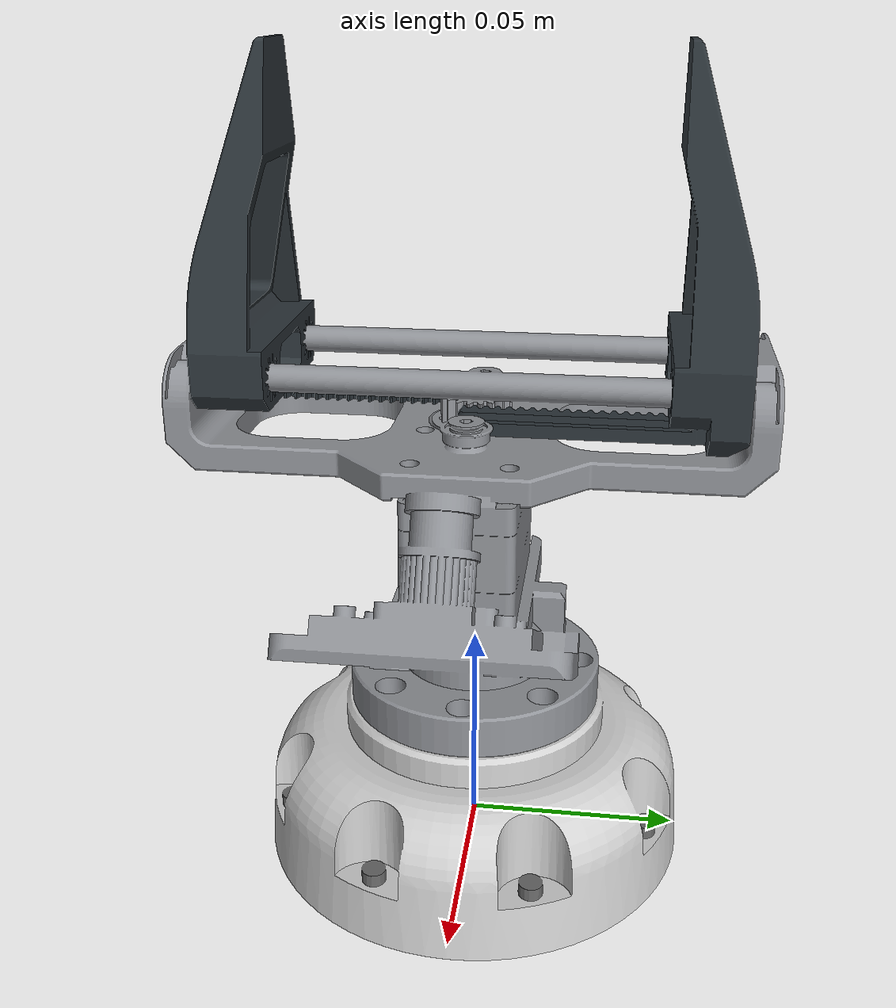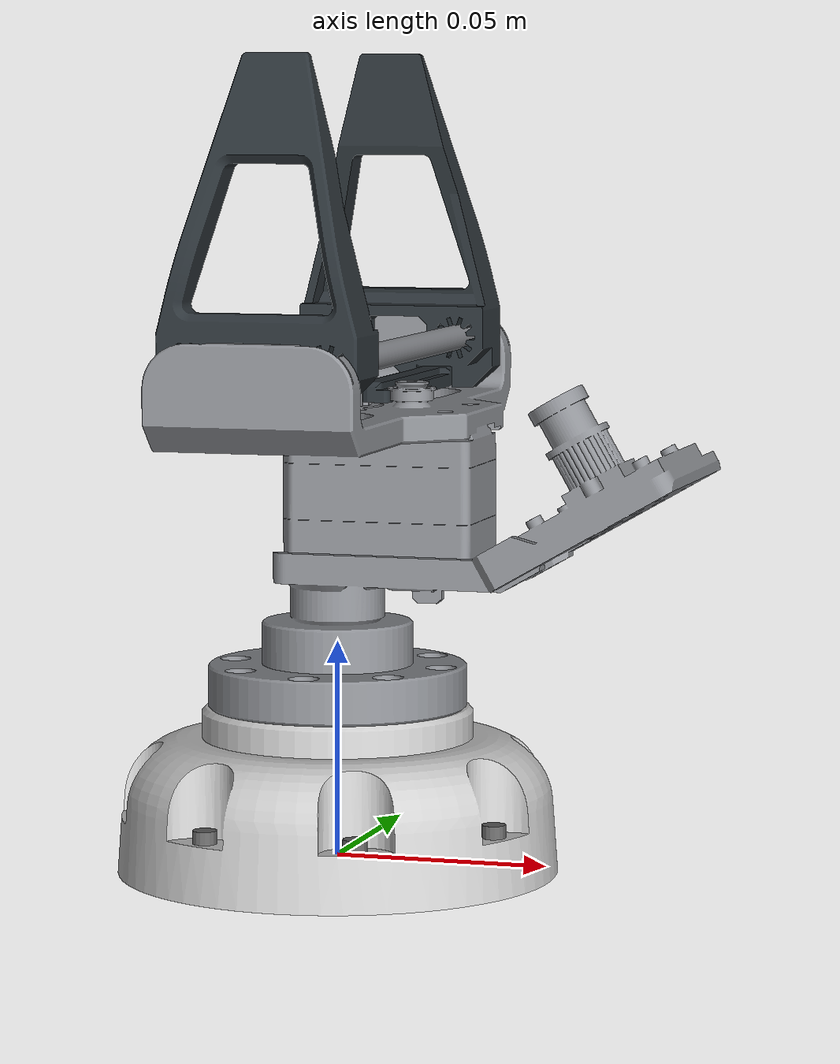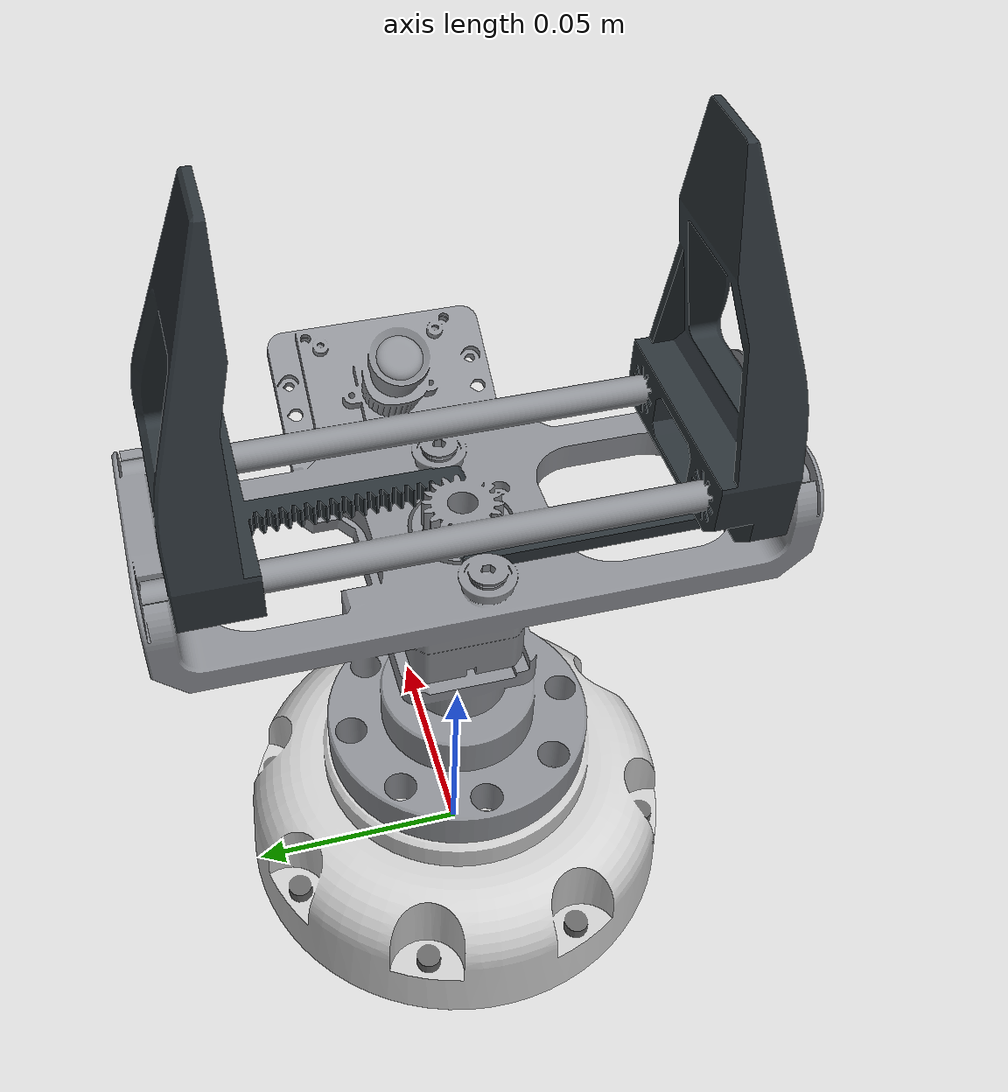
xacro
<?xml version="1.0"?>

<robot name="y_gripper_standalone" xmlns:xacro="http://www.ros.org/wiki/xacro">
    <xacro:include filename="$(find lbr_dual_arm_description)/urdf/y_gripper.xacro" />

    <xacro:arg name="mount_yaw" default="0" />

    <link name="lbr_one_link_7">
        <visual>
            <origin rpy="0 0 0" xyz="0.0 0.0 -1.231" />
            <geometry>
                <mesh filename="package://lbr_description/meshes/iiwa7/visual/link_7.dae" />
            </geometry>
        </visual>
        <collision>
            <origin rpy="0 0 0" xyz="0.0 0.0 -1.231" />
            <geometry>
                <mesh filename="package://lbr_description/meshes/iiwa7/collision/link_7.stl" />
            </geometry>
        </collision>
    </link>

    <joint name="lbr_one_joint_ee" type="fixed">
        <parent link="lbr_one_link_7" />
        <child link="lbr_one_link_ee" />
        <origin xyz="0 0 0.035" rpy="0 0 0" />
    </joint>

    <link name="lbr_one_link_ee" />

    <xacro:y_gripper robot_name="lbr_one" mount_yaw="$(arg mount_yaw)" />
</robot>

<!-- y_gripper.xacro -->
<robot xmlns:xacro="http://www.ros.org/wiki/xacro">
    <xacro:macro name="y_gripper" params="
        robot_name
        mount_yaw:=0
        camera_xyz:='0.055667 0.009000 0.070776'
        camera_rpy:='-0.523599 0.0 1.570796'
        camera_to_tcp_xyz:='-0.009000 0.010847 0.092546'
        camera_to_tcp_rpy:='0.0 0.523599 -1.570796'">
        <link name="${robot_name}_gripper_base_link">
            <inertial>
                <origin xyz="0.0273839865 0 0.0414999998" rpy="0 0 0" />
                <mass value="0.8" />
                <inertia ixx="0.00166886667" ixy="0" ixz="0" iyy="0.00145432361" iyz="0"
                    izz="0.00196999027" />
            </inertial>
            <visual>
                <origin xyz="0 0 0" rpy="0 0 0" />
                <geometry>
                    <mesh filename="package://lbr_dual_arm_description/meshes/y_gripper/hand.STL"
                        scale="0.001 0.001 0.001" />
                </geometry>
                <material name="gripper_body">
                    <color rgba="0.55 0.56 0.58 1" />
                </material>
            </visual>
            <collision>
                <origin xyz="0 0 0" rpy="0 0 0" />
                <geometry>
                    <mesh filename="package://lbr_dual_arm_description/meshes/y_gripper/hand.STL"
                        scale="0.001 0.001 0.001" />
                </geometry>
            </collision>
        </link>

        <link name="${robot_name}_left_finger_link">
            <inertial>
                <origin xyz="0 -0.0275000005 0.1105" rpy="0 0 0" />
                <mass value="0.08" />
                <inertia ixx="6.74733326e-05" ixy="0" ixz="0" iyy="5.67733333e-05" iyz="0"
                    izz="3.89133326e-05" />
            </inertial>
            <visual>
                <origin xyz="0 0 0" rpy="0 0 0" />
                <geometry>
                    <mesh
                        filename="package://lbr_dual_arm_description/meshes/y_gripper/left_finger.STL"
                        scale="0.001 0.001 0.001" />
                </geometry>
                <material name="finger_dark">
                    <color rgba="0.17 0.2 0.22 1" />
                </material>
            </visual>
            <collision>
                <origin xyz="0 0 0" rpy="0 0 0" />
                <geometry>
                    <mesh
                        filename="package://lbr_dual_arm_description/meshes/y_gripper/left_finger.STL"
                        scale="0.001 0.001 0.001" />
                </geometry>
            </collision>
        </link>

        <link name="${robot_name}_right_finger_link">
            <inertial>
                <origin xyz="0 0.0275000005 0.1105" rpy="0 0 0" />
                <mass value="0.08" />
                <inertia ixx="6.74733326e-05" ixy="0" ixz="0" iyy="5.67733333e-05" iyz="0"
                    izz="3.89133326e-05" />
            </inertial>
            <visual>
                <origin xyz="0 0 0" rpy="0 0 0" />
                <geometry>
                    <mesh
                        filename="package://lbr_dual_arm_description/meshes/y_gripper/right_finger.STL"
                        scale="0.001 0.001 0.001" />
                </geometry>
                <material name="finger_dark">
                    <color rgba="0.17 0.2 0.22 1" />
                </material>
            </visual>
            <collision>
                <origin xyz="0 0 0" rpy="0 0 0" />
                <geometry>
                    <mesh
                        filename="package://lbr_dual_arm_description/meshes/y_gripper/right_finger.STL"
                        scale="0.001 0.001 0.001" />
                </geometry>
            </collision>
        </link>

        <link name="${robot_name}_gripper_tcp">
            <inertial>
                <origin xyz="0 0 0" rpy="0 0 0" />
                <mass value="0.001" />
                <inertia ixx="1e-07" ixy="0" ixz="0" iyy="1e-07" iyz="0" izz="1e-07" />
            </inertial>
        </link>

        <link name="${robot_name}_realsense_link">
            <inertial>
                <origin xyz="0 0 0" rpy="0 0 0" />
                <mass value="0.06" />
                <inertia ixx="1.1465e-05" ixy="0" ixz="0" iyy="1.189e-05" iyz="0"
                    izz="1.8065e-05" />
            </inertial>
        </link>

        <joint name="${robot_name}_gripper_mount_joint" type="fixed">
            <origin xyz="0 0 0" rpy="0 0 ${mount_yaw}" />
            <parent link="${robot_name}_link_ee" />
            <child link="${robot_name}_gripper_base_link" />
        </joint>

        <joint name="${robot_name}_realsense_mount_joint" type="fixed">
            <origin xyz="${camera_xyz}" rpy="${camera_rpy}" />
            <parent link="${robot_name}_gripper_base_link" />
            <child link="${robot_name}_realsense_link" />
        </joint>

        <joint name="${robot_name}_gripper_tcp_joint" type="fixed">
            <origin xyz="${camera_to_tcp_xyz}" rpy="${camera_to_tcp_rpy}" />
            <parent link="${robot_name}_realsense_link" />
            <child link="${robot_name}_gripper_tcp" />
        </joint>

        <joint name="${robot_name}_left_finger_joint" type="prismatic">
            <origin xyz="0 0 0" rpy="0 0 0" />
            <parent link="${robot_name}_gripper_base_link" />
            <child link="${robot_name}_left_finger_link" />
            <axis xyz="0 1 0" />
            <limit lower="0" upper="0.04" effort="100" velocity="0.2" />
            <dynamics damping="10.0" friction="0.0" />
        </joint>

        <joint name="${robot_name}_right_finger_joint" type="prismatic">
            <origin xyz="0 0 0" rpy="0 0 0" />
            <parent link="${robot_name}_gripper_base_link" />
            <child link="${robot_name}_right_finger_link" />
            <axis xyz="0 -1 0" />
            <limit lower="0" upper="0.04" effort="100" velocity="0.2" />
            <dynamics damping="10.0" friction="0.0" />
            <mimic joint="${robot_name}_left_finger_joint" multiplier="1" offset="0" />
        </joint>

        <ros2_control name="${robot_name}_gripper_system" type="system">
            <hardware>
                <plugin>mock_components/GenericSystem</plugin>
            </hardware>
            <joint name="${robot_name}_left_finger_joint">
                <command_interface name="position">
                    <param name="min">0</param>
                    <param name="max">0.04</param>
                </command_interface>
                <state_interface name="position">
                    <param name="initial_value">0.0</param>
                </state_interface>
            </joint>
        </ros2_control>
    </xacro:macro>
</robot>
